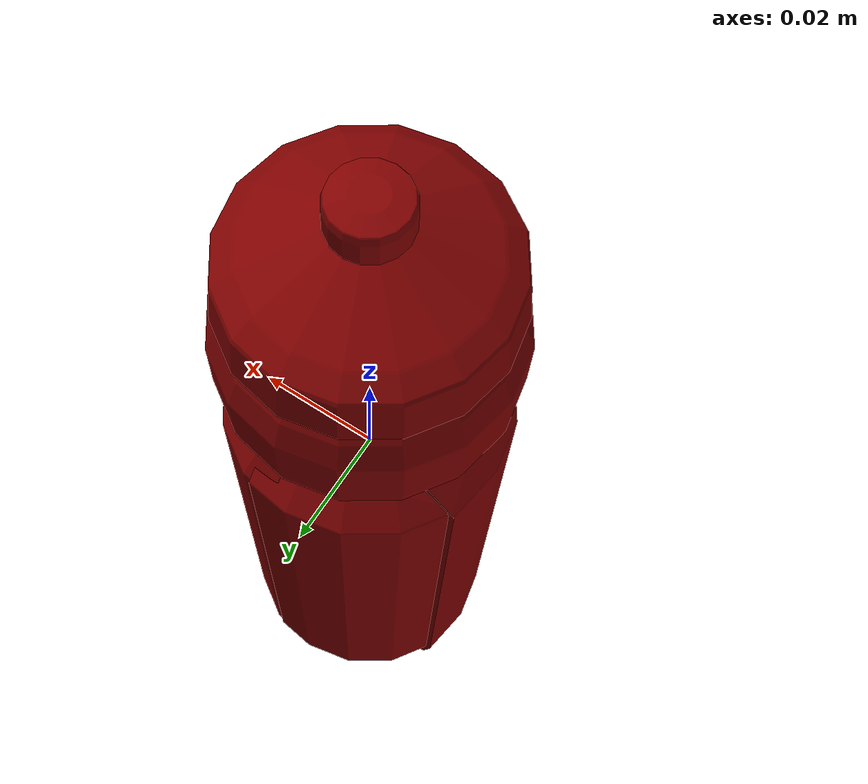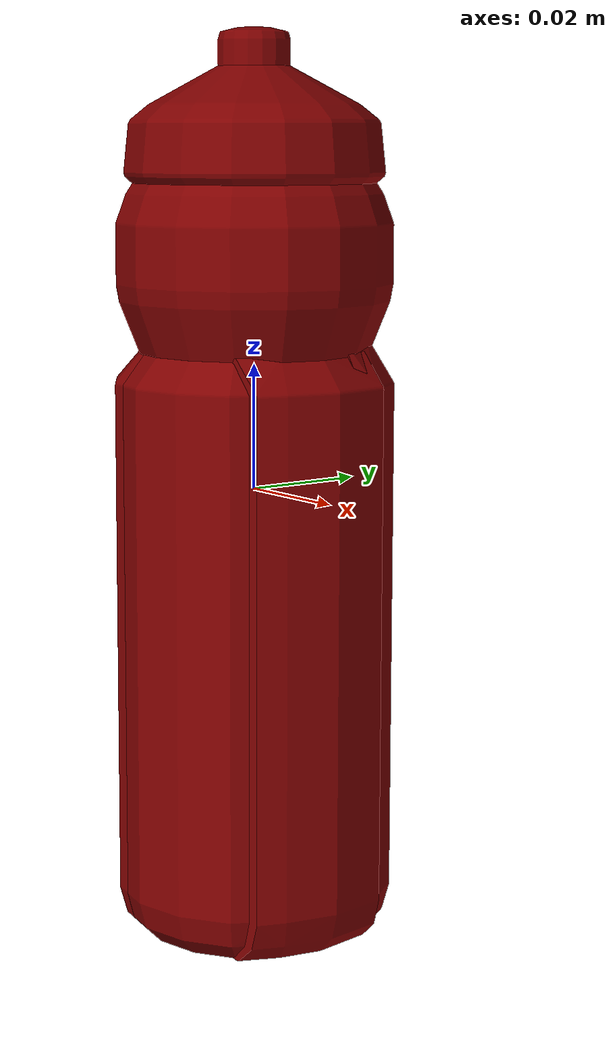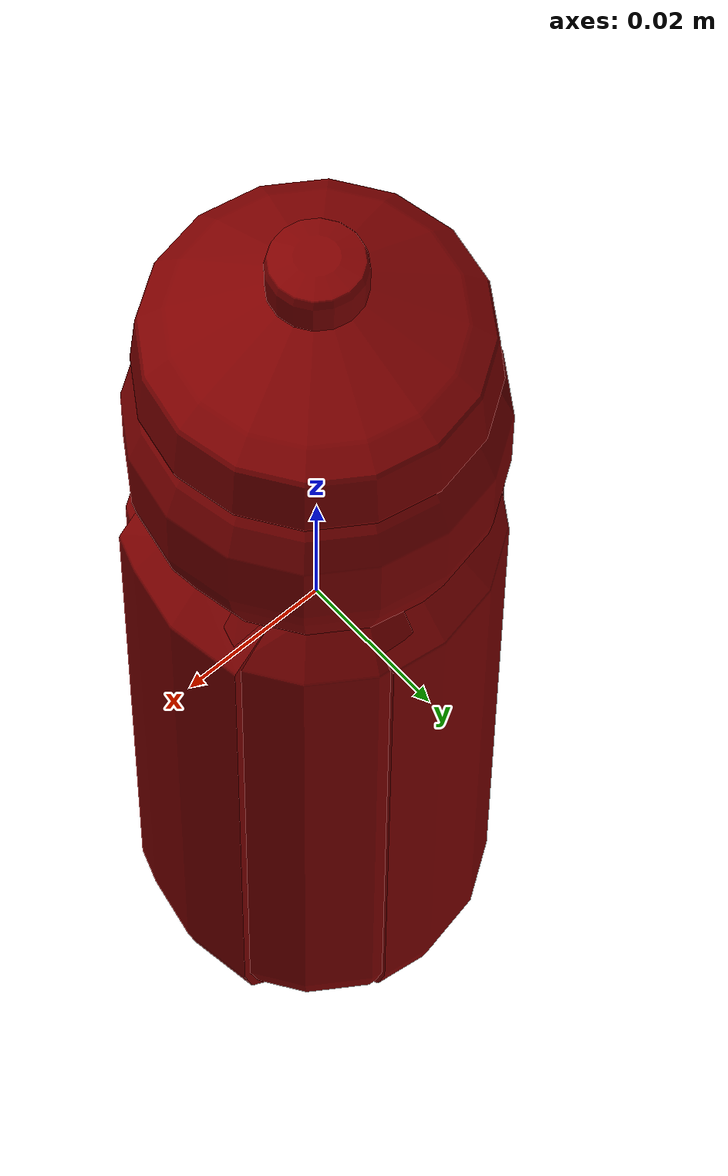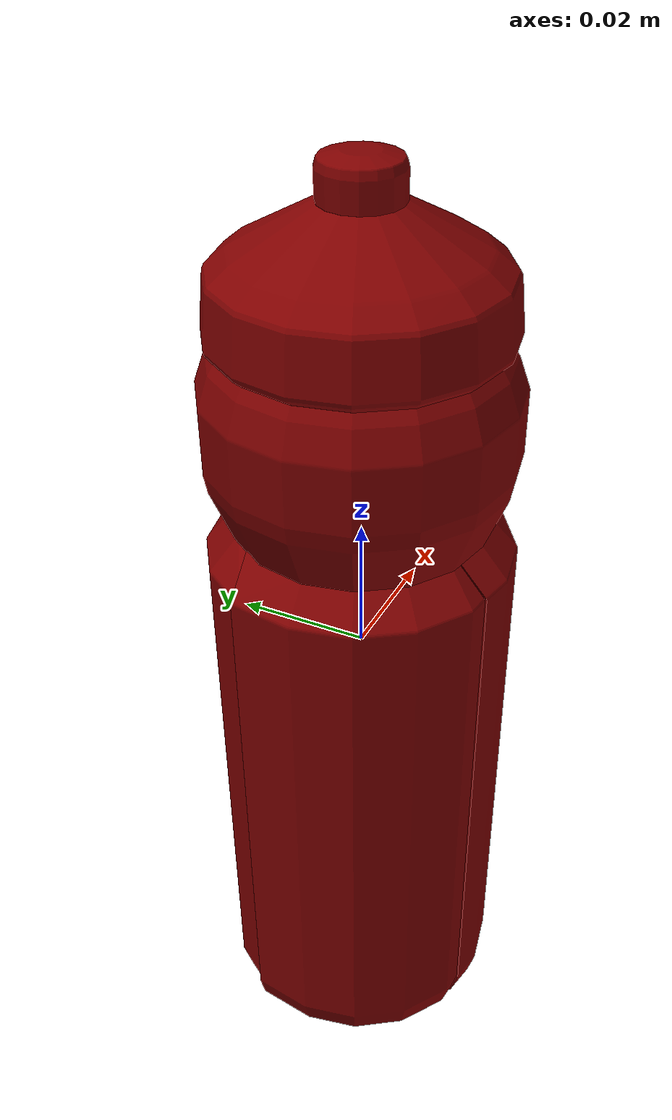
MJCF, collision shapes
<?xml version='1.0' encoding='utf-8'?>
<mujoco model="water_bottle_8">
  <asset>
    <mesh file="visual/model_normalized_0.obj" name="model_normalized_0_vis" scale="0.14500000000000002 0.14500000000000002 0.14500000000000002" refquat="1.0 0.0 0.0 0.0" />
    <texture type="2d" name="image0" file="visual/image0.png" />
    <material name="None.002" texture="image0" specular="0.5" shininess="0.25" />
    <mesh file="collision/collision_mesh_collision_0.obj" name="water_collision_mesh_0" scale="0.14500000000000002 0.14500000000000002 0.14500000000000002" refquat="1.0 0.0 0.0 0.0" />
    <mesh file="collision/collision_mesh_collision_1.obj" name="water_collision_mesh_1" scale="0.14500000000000002 0.14500000000000002 0.14500000000000002" refquat="1.0 0.0 0.0 0.0" />
    <mesh file="collision/collision_mesh_collision_2.obj" name="water_collision_mesh_2" scale="0.14500000000000002 0.14500000000000002 0.14500000000000002" refquat="1.0 0.0 0.0 0.0" />
    <mesh file="collision/collision_mesh_collision_3.obj" name="water_collision_mesh_3" scale="0.14500000000000002 0.14500000000000002 0.14500000000000002" refquat="1.0 0.0 0.0 0.0" />
    <mesh file="collision/collision_mesh_collision_4.obj" name="water_collision_mesh_4" scale="0.14500000000000002 0.14500000000000002 0.14500000000000002" refquat="1.0 0.0 0.0 0.0" />
    <mesh file="collision/collision_mesh_collision_5.obj" name="water_collision_mesh_5" scale="0.14500000000000002 0.14500000000000002 0.14500000000000002" refquat="1.0 0.0 0.0 0.0" />
    <mesh file="collision/collision_mesh_collision_6.obj" name="water_collision_mesh_6" scale="0.14500000000000002 0.14500000000000002 0.14500000000000002" refquat="1.0 0.0 0.0 0.0" />
    <mesh file="collision/collision_mesh_collision_7.obj" name="water_collision_mesh_7" scale="0.14500000000000002 0.14500000000000002 0.14500000000000002" refquat="1.0 0.0 0.0 0.0" />
    </asset>
  <default>
    <default class="region">
      <geom group="1" conaffinity="0" contype="0" rgba="0 1 0 0" />
      </default>
    <default class="collision">
      <geom group="0" rgba="0.5 0 0 0.5" density="1000.0" />
      </default>
    </default>
  <worldbody>
    <body>
      <body name="object">
        <geom solimp="0.998 0.998 0.001" solref="0.001 1" density="100" friction="0.95 0.3 0.1" type="mesh" mesh="model_normalized_0_vis" conaffinity="0" contype="0" group="1" material="None.002" />
        <geom class="region" name="reg_bbox" type="box" pos="-1.765954999999951e-05 -0.0001495754750000005 -0.00031851787500000034" size="0.0223187712 0.02201963185 0.07214988662500002" />
        <geom mesh="water_collision_mesh_0" type="mesh" class="collision" />
        <geom mesh="water_collision_mesh_1" type="mesh" class="collision" />
        <geom mesh="water_collision_mesh_2" type="mesh" class="collision" />
        <geom mesh="water_collision_mesh_3" type="mesh" class="collision" />
        <geom mesh="water_collision_mesh_4" type="mesh" class="collision" />
        <geom mesh="water_collision_mesh_5" type="mesh" class="collision" />
        <geom mesh="water_collision_mesh_6" type="mesh" class="collision" />
        <geom mesh="water_collision_mesh_7" type="mesh" class="collision" />
        </body>
      </body>
    </worldbody>
  </mujoco>
